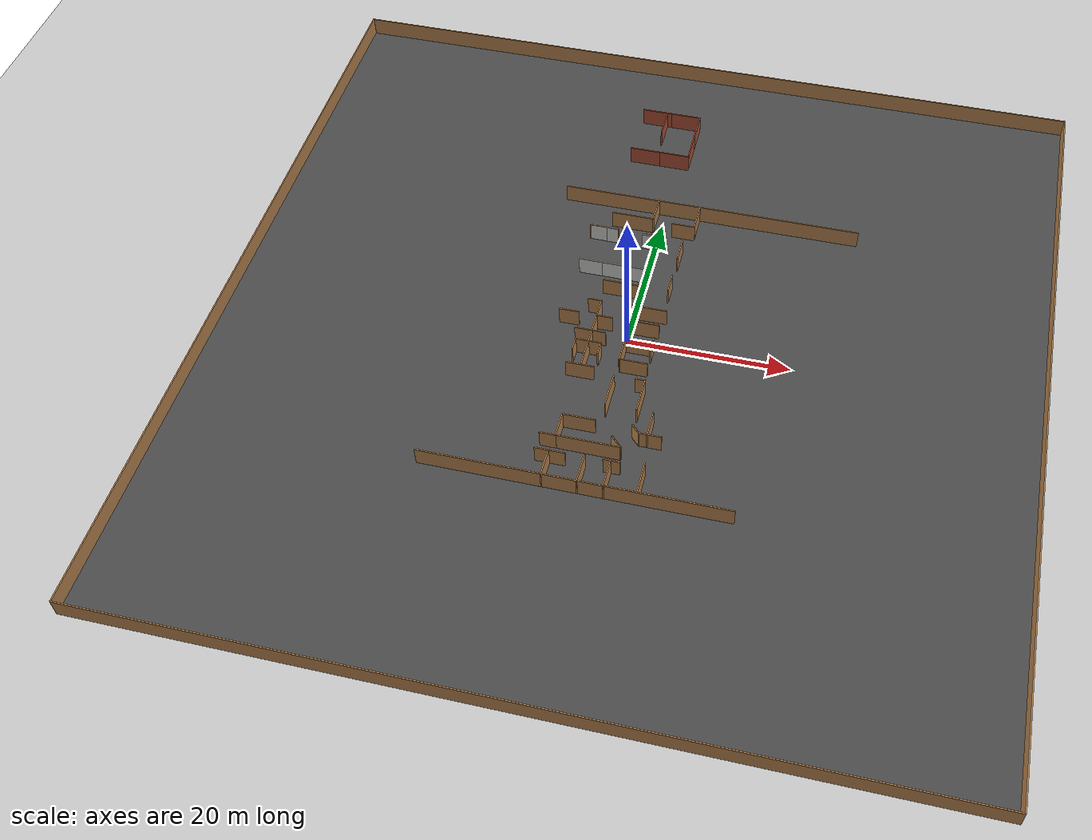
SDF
<sdf version="1.6">
 <world name="default">
  <model name="ground_plane">
   <static>1</static>
   <link name="link">
    <collision name="collision">
     <geometry><plane><normal>0 0 1</normal><size>100 100</size></plane></geometry>
     <surface><friction><ode><mu>100</mu><mu2>50</mu2></ode></friction></surface>
    </collision>
    <visual name="visual">
     <cast_shadows>0</cast_shadows>
     <geometry><plane><normal>0 0 1</normal><size>100 100</size></plane></geometry>
     <material>
      <script><uri>file://media/materials/scripts/gazebo.material</uri><name>Gazebo/Grey</name></script>
     </material>
    </visual>
   </link>
  </model>
  <model name="map_frame">
   <link name="Wall_0">
    <collision name="Wall_0_Collision">
     <geometry><box><size>100.05 0.15 2.5</size></box></geometry>
     <pose>0 0 1.25 0 -0 0</pose>
    </collision>
    <visual name="Wall_0_Visual">
     <pose>0 0 1.25 0 -0 0</pose>
     <geometry><box><size>100.05 0.15 2.5</size></box></geometry>
     <material>
      <script><uri>file://media/materials/scripts/gazebo.material</uri><name>Gazebo/Wood</name></script>
      <ambient>1 1 1 1</ambient>
     </material>
    </visual>
    <pose>0 50 0 0 -0 0</pose>
   </link>
   <link name="Wall_1">
    <collision name="Wall_1_Collision">
     <geometry><box><size>100.05 0.15 2.5</size></box></geometry>
     <pose>0 0 1.25 0 -0 0</pose>
    </collision>
    <visual name="Wall_1_Visual">
     <pose>0 0 1.25 0 -0 0</pose>
     <geometry><box><size>100.05 0.15 2.5</size></box></geometry>
     <material>
      <script><uri>file://media/materials/scripts/gazebo.material</uri><name>Gazebo/Wood</name></script>
      <ambient>1 1 1 1</ambient>
     </material>
    </visual>
    <pose>50 0 0 0 0 -1.5708</pose>
   </link>
   <link name="Wall_2">
    <collision name="Wall_2_Collision">
     <geometry><box><size>100.05 0.15 2.5</size></box></geometry>
     <pose>0 0 1.25 0 -0 0</pose>
    </collision>
    <visual name="Wall_2_Visual">
     <pose>0 0 1.25 0 -0 0</pose>
     <geometry><box><size>100.05 0.15 2.5</size></box></geometry>
     <material>
      <script><uri>file://media/materials/scripts/gazebo.material</uri><name>Gazebo/Wood</name></script>
      <ambient>1 1 1 1</ambient>
     </material>
    </visual>
    <pose>0 -50 0 0 -0 3.14159</pose>
   </link>
   <link name="Wall_3">
    <collision name="Wall_3_Collision">
     <geometry><box><size>100.05 0.15 2.5</size></box></geometry>
     <pose>0 0 1.25 0 -0 0</pose>
    </collision>
    <visual name="Wall_3_Visual">
     <pose>0 0 1.25 0 -0 0</pose>
     <geometry><box><size>100.05 0.15 2.5</size></box></geometry>
     <material>
      <script><uri>file://media/materials/scripts/gazebo.material</uri><name>Gazebo/Wood</name></script>
      <ambient>1 1 1 1</ambient>
     </material>
    </visual>
    <pose>-50 0 0 0 -0 1.5708</pose>
   </link>
   <static>1</static>
  </model>
  <model name="asphalt_plane">
   <static>1</static>
   <link name="link">
    <collision name="collision"><geometry><box><size>100 100 0.1</size></box></geometry></collision>
    <visual name="visual">
     <cast_shadows>0</cast_shadows>
     <geometry><box><size>100 100 0.1</size></box></geometry>
     <material>
      <script>
       <uri>model://asphalt_plane/materials/scripts</uri>
       <uri>model://asphalt_plane/materials/textures</uri>
       <name>vrc/asphalt</name>
      </script>
     </material>
    </visual>
   </link>
  </model>
  <model name="concrete_wall_1">
   <pose>-0.231026 14.3447 0 0 -0 0</pose>
   <link name="Wall_0">
    <collision name="Wall_0_Collision">
     <geometry><box><size>3 0.15 2.5</size></box></geometry>
     <pose>0 0 1.25 0 -0 0</pose>
    </collision>
    <visual name="Wall_0_Visual">
     <pose>0 0 1.25 0 -0 0</pose>
     <geometry><box><size>3 0.15 2.5</size></box></geometry>
     <material>
      <script><uri>file://media/materials/scripts/gazebo.material</uri><name>Gazebo/CeilingTiled</name></script>
      <ambient>1 1 1 1</ambient>
     </material>
     <meta><layer>0</layer></meta>
    </visual>
    <pose>0 0 0 0 -0 1.5708</pose>
   </link>
   <static>1</static>
  </model>
  <model name="concrete_wall_2">
   <pose>-0.252871 11.4504 0 0 -0 0</pose>
   <link name="Wall_0">
    <collision name="Wall_0_Collision">
     <geometry><box><size>3 0.15 2.5</size></box></geometry>
     <pose>0 0 1.25 0 -0 0</pose>
    </collision>
    <visual name="Wall_0_Visual">
     <pose>0 0 1.25 0 -0 0</pose>
     <geometry><box><size>3 0.15 2.5</size></box></geometry>
     <material>
      <script><uri>file://media/materials/scripts/gazebo.material</uri><name>Gazebo/CeilingTiled</name></script>
      <ambient>1 1 1 1</ambient>
     </material>
     <meta><layer>0</layer></meta>
    </visual>
    <pose>0 0 0 0 -0 1.5708</pose>
   </link>
   <static>1</static>
  </model>
  <model name="concrete_wall_6_clone_4">
   <pose>-1.64895 9.93911 0 0 -0 1.57079</pose>
   <link name="Wall_0">
    <collision name="Wall_0_Collision">
     <geometry><box><size>3 0.15 2.5</size></box></geometry>
     <pose>0 0 1.25 0 -0 0</pose>
    </collision>
    <visual name="Wall_0_Visual">
     <pose>0 0 1.25 0 -0 0</pose>
     <geometry><box><size>3 0.15 2.5</size></box></geometry>
     <material>
      <script><uri>file://media/materials/scripts/gazebo.material</uri><name>Gazebo/CeilingTiled</name></script>
      <ambient>1 1 1 1</ambient>
     </material>
     <meta><layer>0</layer></meta>
    </visual>
    <pose>0 0 0 0 -0 1.5708</pose>
   </link>
   <static>1</static>
  </model>
  <model name="concrete_wall_6_clone_5">
   <pose>-4.08866 9.93655 0 0 -0 1.57079</pose>
   <link name="Wall_0">
    <collision name="Wall_0_Collision">
     <geometry><box><size>3 0.15 2.5</size></box></geometry>
     <pose>0 0 1.25 0 -0 0</pose>
    </collision>
    <visual name="Wall_0_Visual">
     <pose>0 0 1.25 0 -0 0</pose>
     <geometry><box><size>3 0.15 2.5</size></box></geometry>
     <material>
      <script><uri>file://media/materials/scripts/gazebo.material</uri><name>Gazebo/CeilingTiled</name></script>
      <ambient>1 1 1 1</ambient>
     </material>
     <meta><layer>0</layer></meta>
    </visual>
    <pose>0 0 0 0 -0 1.5708</pose>
   </link>
   <static>1</static>
  </model>
  <model name="concrete_wall_6_clone_6">
   <pose>-7.05086 9.93464 0 0 -0 1.57079</pose>
   <link name="Wall_0">
    <collision name="Wall_0_Collision">
     <geometry><box><size>3 0.15 2.5</size></box></geometry>
     <pose>0 0 1.25 0 -0 0</pose>
    </collision>
    <visual name="Wall_0_Visual">
     <pose>0 0 1.25 0 -0 0</pose>
     <geometry><box><size>3 0.15 2.5</size></box></geometry>
     <material>
      <script><uri>file://media/materials/scripts/gazebo.material</uri><name>Gazebo/CeilingTiled</name></script>
      <ambient>1 1 1 1</ambient>
     </material>
     <meta><layer>0</layer></meta>
    </visual>
    <pose>0 0 0 0 -0 1.5708</pose>
   </link>
   <static>1</static>
  </model>
  <model name="concrete_wall_6_clone_7">
   <pose>-7.08346 16.0324 0 0 -0 1.57079</pose>
   <link name="Wall_0">
    <collision name="Wall_0_Collision">
     <geometry><box><size>3 0.15 2.5</size></box></geometry>
     <pose>0 0 1.25 0 -0 0</pose>
    </collision>
    <visual name="Wall_0_Visual">
     <pose>0 0 1.25 0 -0 0</pose>
     <geometry><box><size>3 0.15 2.5</size></box></geometry>
     <material>
      <script><uri>file://media/materials/scripts/gazebo.material</uri><name>Gazebo/CeilingTiled</name></script>
      <ambient>1 1 1 1</ambient>
     </material>
     <meta><layer>0</layer></meta>
    </visual>
    <pose>0 0 0 0 -0 1.5708</pose>
   </link>
   <static>1</static>
  </model>
  <model name="concrete_wall_6_clone_8">
   <pose>-1.01529 15.8 0 0 -0 1.57079</pose>
   <link name="Wall_0">
    <collision name="Wall_0_Collision">
     <geometry><box><size>1.5 0.15 2.5</size></box></geometry>
     <pose>0 0 1.25 0 -0 0</pose>
    </collision>
    <visual name="Wall_0_Visual">
     <pose>0 0 1.25 0 -0 0</pose>
     <geometry><box><size>1.5 0.15 2.5</size></box></geometry>
     <material>
      <script><uri>file://media/materials/scripts/gazebo.material</uri><name>Gazebo/CeilingTiled</name></script>
      <ambient>1 1 1 1</ambient>
     </material>
     <meta><layer>0</layer></meta>
    </visual>
    <pose>0 0 0 0 -0 1.5708</pose>
   </link>
   <static>1</static>
  </model>
  <model name="brick_wall_2">
   <pose>-0.863663 31.3819 0 0 -0 0</pose>
   <link name="Wall_0">
    <collision name="Wall_0_Collision">
     <geometry><box><size>4 0.15 2.5</size></box></geometry>
     <pose>0 0 1.25 0 -0 0</pose>
    </collision>
    <visual name="Wall_0_Visual">
     <pose>0 0 1.25 0 -0 0</pose>
     <geometry><box><size>4 0.15 2.5</size></box></geometry>
     <material>
      <script><uri>file://media/materials/scripts/gazebo.material</uri><name>Gazebo/Bricks</name></script>
      <ambient>1 1 1 1</ambient>
     </material>
     <meta><layer>0</layer></meta>
    </visual>
   </link>
   <static>1</static>
  </model>
  <model name="brick_wall_2_clone">
   <pose>-4.86366 31.3819 0 0 -0 0</pose>
   <link name="Wall_0">
    <collision name="Wall_0_Collision">
     <geometry><box><size>4 0.15 2.5</size></box></geometry>
     <pose>0 0 1.25 0 -0 0</pose>
    </collision>
    <visual name="Wall_0_Visual">
     <pose>0 0 1.25 0 -0 0</pose>
     <geometry><box><size>4 0.15 2.5</size></box></geometry>
     <material>
      <script><uri>file://media/materials/scripts/gazebo.material</uri><name>Gazebo/Bricks</name></script>
      <ambient>1 1 1 1</ambient>
     </material>
     <meta><layer>0</layer></meta>
    </visual>
   </link>
   <static>1</static>
  </model>
  <model name="brick_wall_2_clone_3">
   <pose>-0.863663 39.3819 0 0 -0 0</pose>
   <link name="Wall_0">
    <collision name="Wall_0_Collision">
     <geometry><box><size>4 0.15 2.5</size></box></geometry>
     <pose>0 0 1.25 0 -0 0</pose>
    </collision>
    <visual name="Wall_0_Visual">
     <pose>0 0 1.25 0 -0 0</pose>
     <geometry><box><size>4 0.15 2.5</size></box></geometry>
     <material>
      <script><uri>file://media/materials/scripts/gazebo.material</uri><name>Gazebo/Bricks</name></script>
      <ambient>1 1 1 1</ambient>
     </material>
     <meta><layer>0</layer></meta>
    </visual>
   </link>
   <static>1</static>
  </model>
  <model name="brick_wall_2_clone_4">
   <pose>-4.86366 39.3819 0 0 -0 0</pose>
   <link name="Wall_0">
    <collision name="Wall_0_Collision">
     <geometry><box><size>4 0.15 2.5</size></box></geometry>
     <pose>0 0 1.25 0 -0 0</pose>
    </collision>
    <visual name="Wall_0_Visual">
     <pose>0 0 1.25 0 -0 0</pose>
     <geometry><box><size>4 0.15 2.5</size></box></geometry>
     <material>
      <script><uri>file://media/materials/scripts/gazebo.material</uri><name>Gazebo/Bricks</name></script>
      <ambient>1 1 1 1</ambient>
     </material>
     <meta><layer>0</layer></meta>
    </visual>
   </link>
   <static>1</static>
  </model>
  <model name="brick_wall_3">
   <pose>1.06218 33.4428 0 0 -0 1.57079</pose>
   <link name="Wall_0">
    <collision name="Wall_0_Collision">
     <geometry><box><size>4 0.15 2.5</size></box></geometry>
     <pose>0 0 1.25 0 -0 0</pose>
    </collision>
    <visual name="Wall_0_Visual">
     <pose>0 0 1.25 0 -0 0</pose>
     <geometry><box><size>4 0.15 2.5</size></box></geometry>
     <material>
      <script><uri>file://media/materials/scripts/gazebo.material</uri><name>Gazebo/Bricks</name></script>
      <ambient>1 1 1 1</ambient>
     </material>
     <meta><layer>0</layer></meta>
    </visual>
   </link>
   <static>1</static>
  </model>
  <model name="brick_wall_3_clone">
   <pose>1.06218 37.4428 0 0 -0 1.57079</pose>
   <link name="Wall_0">
    <collision name="Wall_0_Collision">
     <geometry><box><size>4 0.15 2.5</size></box></geometry>
     <pose>0 0 1.25 0 -0 0</pose>
    </collision>
    <visual name="Wall_0_Visual">
     <pose>0 0 1.25 0 -0 0</pose>
     <geometry><box><size>4 0.15 2.5</size></box></geometry>
     <material>
      <script><uri>file://media/materials/scripts/gazebo.material</uri><name>Gazebo/Bricks</name></script>
      <ambient>1 1 1 1</ambient>
     </material>
     <meta><layer>0</layer></meta>
    </visual>
   </link>
   <static>1</static>
  </model>
  <model name="brick_wall_3_clone_2">
   <pose>-3.48128 37.3947 0 0 -0 1.57079</pose>
   <link name="Wall_0">
    <collision name="Wall_0_Collision">
     <geometry><box><size>4 0.15 2.5</size></box></geometry>
     <pose>0 0 1.25 0 -0 0</pose>
    </collision>
    <visual name="Wall_0_Visual">
     <pose>0 0 1.25 0 -0 0</pose>
     <geometry><box><size>4 0.15 2.5</size></box></geometry>
     <material>
      <script><uri>file://media/materials/scripts/gazebo.material</uri><name>Gazebo/Bricks</name></script>
      <ambient>1 1 1 1</ambient>
     </material>
     <meta><layer>0</layer></meta>
    </visual>
   </link>
   <static>1</static>
  </model>
  <model name="willowgarage_v1_1">
   <pose>-14.3408 -3.86286 0 0 -0 0</pose>
   <link name="Wall_112">
    <collision name="Wall_112_Collision">
     <geometry><box><size>3.75 0.15 2.5</size></box></geometry>
     <pose>0 0 1.25 0 -0 0</pose>
    </collision>
    <visual name="Wall_112_Visual">
     <pose>0 0 1.25 0 -0 0</pose>
     <geometry><box><size>3.75 0.15 2.5</size></box></geometry>
     <material>
      <script><uri>file://media/materials/scripts/gazebo.material</uri><name>Gazebo/Wood</name></script>
      <ambient>1 1 1 1</ambient>
     </material>
     <meta><layer>0</layer></meta>
    </visual>
    <pose>18.799 24.2454 0 0 0 -1.5708</pose>
   </link>
   <link name="Wall_113">
    <collision name="Wall_113_Collision">
     <geometry><box><size>3 0.15 2.5</size></box></geometry>
     <pose>0 0 1.25 0 -0 0</pose>
    </collision>
    <visual name="Wall_113_Visual">
     <pose>0 0 1.25 0 -0 0</pose>
     <geometry><box><size>3 0.15 2.5</size></box></geometry>
     <material>
      <script><uri>file://media/materials/scripts/gazebo.material</uri><name>Gazebo/Wood</name></script>
      <ambient>1 1 1 1</ambient>
     </material>
     <meta><layer>0</layer></meta>
    </visual>
    <pose>17.374 22.4454 0 0 -0 3.14159</pose>
   </link>
   <link name="Wall_115">
    <collision name="Wall_115_Collision">
     <geometry><box><size>3.5 0.15 2.5</size></box></geometry>
     <pose>0 0 1.25 0 -0 0</pose>
    </collision>
    <visual name="Wall_115_Visual">
     <pose>0 0 1.25 0 -0 0</pose>
     <geometry><box><size>3.5 0.15 2.5</size></box></geometry>
     <material>
      <script><uri>file://media/materials/scripts/gazebo.material</uri><name>Gazebo/Wood</name></script>
      <ambient>1 1 1 1</ambient>
     </material>
     <meta><layer>0</layer></meta>
    </visual>
    <pose>13.3845 24.3704 0 0 0 -1.5708</pose>
   </link>
   <link name="Wall_125">
    <collision name="Wall_125_Collision">
     <geometry><box><size>5.5 0.15 2.5</size></box></geometry>
     <pose>0 0 1.25 0 -0 0</pose>
    </collision>
    <visual name="Wall_125_Visual">
     <pose>0 0 1.25 0 -0 0</pose>
     <geometry><box><size>5.5 0.15 2.5</size></box></geometry>
     <material>
      <script><uri>file://media/materials/scripts/gazebo.material</uri><name>Gazebo/Wood</name></script>
      <ambient>1 1 1 1</ambient>
     </material>
     <meta><layer>0</layer></meta>
    </visual>
    <pose>10.7066 22.7229 0 0 -0 0</pose>
   </link>
   <link name="Wall_134">
    <collision name="Wall_134_Collision">
     <geometry><box><size>3.75 0.15 2.5</size></box></geometry>
     <pose>0 0 1.25 0 -0 0</pose>
    </collision>
    <visual name="Wall_134_Visual">
     <pose>0 0 1.25 0 -0 0</pose>
     <geometry><box><size>3.75 0.15 2.5</size></box></geometry>
     <material>
      <script><uri>file://media/materials/scripts/gazebo.material</uri><name>Gazebo/Wood</name></script>
      <ambient>1 1 1 1</ambient>
     </material>
     <meta><layer>0</layer></meta>
    </visual>
    <pose>7.54321 19.9124 0 0 -0 0</pose>
   </link>
   <link name="Wall_17">
    <collision name="Wall_17_Collision">
     <geometry><box><size>38.5 0.15 2.5</size></box></geometry>
     <pose>0 0 1.25 0 -0 0</pose>
    </collision>
    <visual name="Wall_17_Visual">
     <pose>0 0 1.25 0 -0 0</pose>
     <geometry><box><size>38.5 0.15 2.5</size></box></geometry>
     <material>
      <script><uri>file://media/materials/scripts/gazebo.material</uri><name>Gazebo/Wood</name></script>
      <ambient>1 1 1 1</ambient>
     </material>
     <meta><layer>0</layer></meta>
    </visual>
    <pose>20.2105 26.1459 0 0 -0 0</pose>
   </link>
   <link name="Wall_189">
    <collision name="Wall_189_Collision">
     <geometry><box><size>2.5 0.15 2.5</size></box></geometry>
     <pose>0 0 1.25 0 -0 0</pose>
    </collision>
    <visual name="Wall_189_Visual">
     <pose>0 0 1.25 0 -0 0</pose>
     <geometry><box><size>2.5 0.15 2.5</size></box></geometry>
     <material>
      <script><uri>file://media/materials/scripts/gazebo.material</uri><name>Gazebo/Wood</name></script>
      <ambient>1 1 1 1</ambient>
     </material>
     <meta><layer>0</layer></meta>
    </visual>
    <pose>17.7844 12.3173 0 0 -0 1.5708</pose>
   </link>
   <link name="Wall_192">
    <collision name="Wall_192_Collision">
     <geometry><box><size>3.25 0.15 2.5</size></box></geometry>
     <pose>0 0 1.25 0 -0 0</pose>
    </collision>
    <visual name="Wall_192_Visual">
     <pose>0 0 1.25 0 -0 0</pose>
     <geometry><box><size>3.25 0.15 2.5</size></box></geometry>
     <material>
      <script><uri>file://media/materials/scripts/gazebo.material</uri><name>Gazebo/Wood</name></script>
      <ambient>1 1 1 1</ambient>
     </material>
     <meta><layer>0</layer></meta>
    </visual>
    <pose>17.8055 18.1447 0 0 0 -1.5708</pose>
   </link>
   <link name="Wall_196">
    <collision name="Wall_196_Collision">
     <geometry><box><size>1.75 0.15 2.5</size></box></geometry>
     <pose>0 0 1.25 0 -0 0</pose>
    </collision>
    <visual name="Wall_196_Visual">
     <pose>0 0 1.25 0 -0 0</pose>
     <geometry><box><size>1.75 0.15 2.5</size></box></geometry>
     <material>
      <script><uri>file://media/materials/scripts/gazebo.material</uri><name>Gazebo/Wood</name></script>
      <ambient>1 1 1 1</ambient>
     </material>
     <meta><layer>0</layer></meta>
    </visual>
    <pose>13.4371 19.8178 0 0 -0 0</pose>
   </link>
   <link name="Wall_197">
    <collision name="Wall_197_Collision">
     <geometry><box><size>9 0.15 2.5</size></box></geometry>
     <pose>0 0 1.25 0 -0 0</pose>
    </collision>
    <visual name="Wall_197_Visual">
     <pose>0 0 1.25 0 -0 0</pose>
     <geometry><box><size>9 0.15 2.5</size></box></geometry>
     <material>
      <script><uri>file://media/materials/scripts/gazebo.material</uri><name>Gazebo/Wood</name></script>
      <ambient>1 1 1 1</ambient>
     </material>
     <meta><layer>0</layer></meta>
    </visual>
    <pose>14.2371 15.3928 0 0 0 -1.5708</pose>
   </link>
   <link name="Wall_198">
    <collision name="Wall_198_Collision">
     <geometry><box><size>4.75 0.15 2.5</size></box></geometry>
     <pose>0 0 1.25 0 -0 0</pose>
    </collision>
    <visual name="Wall_198_Visual">
     <pose>0 0 1.25 0 -0 0</pose>
     <geometry><box><size>4.75 0.15 2.5</size></box></geometry>
     <material>
      <script><uri>file://media/materials/scripts/gazebo.material</uri><name>Gazebo/Wood</name></script>
      <ambient>1 1 1 1</ambient>
     </material>
     <meta><layer>0</layer></meta>
    </visual>
    <pose>11.9371 10.9678 0 0 -0 3.14159</pose>
   </link>
   <link name="Wall_218">
    <collision name="Wall_218_Collision">
     <geometry><box><size>4.02628 0.15 2.5</size></box></geometry>
     <pose>0 0 1.25 0 -0 0</pose>
    </collision>
    <visual name="Wall_218_Visual">
     <pose>0 0 1.25 0 -0 0</pose>
     <geometry><box><size>4.02628 0.15 2.5</size></box></geometry>
     <material>
      <script><uri>file://media/materials/scripts/gazebo.material</uri><name>Gazebo/Wood</name></script>
      <ambient>1 1 1 1</ambient>
     </material>
     <meta><layer>0</layer></meta>
    </visual>
    <pose>16.3894 7.62089 0 0 0 -3.13801</pose>
   </link>
   <link name="Wall_221">
    <collision name="Wall_221_Collision">
     <geometry><box><size>8.75 0.15 2.5</size></box></geometry>
     <pose>0 0 1.25 0 -0 0</pose>
    </collision>
    <visual name="Wall_221_Visual">
     <pose>0 0 1.25 0 -0 0</pose>
     <geometry><box><size>8.75 0.15 2.5</size></box></geometry>
     <material>
      <script><uri>file://media/materials/scripts/gazebo.material</uri><name>Gazebo/Wood</name></script>
      <ambient>1 1 1 1</ambient>
     </material>
     <meta><layer>0</layer></meta>
    </visual>
    <pose>14.4513 3.31394 0 0 -0 1.5708</pose>
   </link>
   <link name="Wall_223">
    <collision name="Wall_223_Collision">
     <geometry><box><size>3.5 0.15 2.5</size></box></geometry>
     <pose>0 0 1.25 0 -0 0</pose>
    </collision>
    <visual name="Wall_223_Visual">
     <pose>0 0 1.25 0 -0 0</pose>
     <geometry><box><size>3.5 0.15 2.5</size></box></geometry>
     <material>
      <script><uri>file://media/materials/scripts/gazebo.material</uri><name>Gazebo/Wood</name></script>
      <ambient>1 1 1 1</ambient>
     </material>
     <meta><layer>0</layer></meta>
    </visual>
    <pose>16.1263 -0.986061 0 0 -0 0</pose>
   </link>
   <link name="Wall_225">
    <collision name="Wall_225_Collision">
     <geometry><box><size>3.5 0.15 2.5</size></box></geometry>
     <pose>0 0 1.25 0 -0 0</pose>
    </collision>
    <visual name="Wall_225_Visual">
     <pose>0 0 1.25 0 -0 0</pose>
     <geometry><box><size>3.5 0.15 2.5</size></box></geometry>
     <material>
      <script><uri>file://media/materials/scripts/gazebo.material</uri><name>Gazebo/Wood</name></script>
      <ambient>1 1 1 1</ambient>
     </material>
     <meta><layer>0</layer></meta>
    </visual>
    <pose>16.2246 5.15959 0 0 -0 0</pose>
   </link>
   <link name="Wall_227">
    <collision name="Wall_227_Collision">
     <geometry><box><size>3.5 0.15 2.5</size></box></geometry>
     <pose>0 0 1.25 0 -0 0</pose>
    </collision>
    <visual name="Wall_227_Visual">
     <pose>0 0 1.25 0 -0 0</pose>
     <geometry><box><size>3.5 0.15 2.5</size></box></geometry>
     <material>
      <script><uri>file://media/materials/scripts/gazebo.material</uri><name>Gazebo/Wood</name></script>
      <ambient>1 1 1 1</ambient>
     </material>
     <meta><layer>0</layer></meta>
    </visual>
    <pose>16.0641 2.21696 0 0 -0 0</pose>
   </link>
   <link name="Wall_228">
    <collision name="Wall_228_Collision">
     <geometry><box><size>1 0.15 2.5</size></box></geometry>
     <pose>0 0 1.25 0 -0 0</pose>
    </collision>
    <visual name="Wall_228_Visual">
     <pose>0 0 1.25 0 -0 0</pose>
     <geometry><box><size>1 0.15 2.5</size></box></geometry>
     <material>
      <script><uri>file://media/materials/scripts/gazebo.material</uri><name>Gazebo/Wood</name></script>
      <ambient>1 1 1 1</ambient>
     </material>
     <meta><layer>0</layer></meta>
    </visual>
    <pose>17.7391 2.64196 0 0 -0 1.5708</pose>
   </link>
   <link name="Wall_229">
    <collision name="Wall_229_Collision">
     <geometry><box><size>2 0.15 2.5</size></box></geometry>
     <pose>0 0 1.25 0 -0 0</pose>
    </collision>
    <visual name="Wall_229_Visual">
     <pose>0 0 1.25 0 -0 0</pose>
     <geometry><box><size>2 0.15 2.5</size></box></geometry>
     <material>
      <script><uri>file://media/materials/scripts/gazebo.material</uri><name>Gazebo/Wood</name></script>
      <ambient>1 1 1 1</ambient>
     </material>
     <meta><layer>0</layer></meta>
    </visual>
    <pose>17.7391 2.14196 0 0 0 -1.5708</pose>
   </link>
   <link name="Wall_234">
    <collision name="Wall_234_Collision">
     <geometry><box><size>7.75 0.15 2.5</size></box></geometry>
     <pose>0 0 1.25 0 -0 0</pose>
    </collision>
    <visual name="Wall_234_Visual">
     <pose>0 0 1.25 0 -0 0</pose>
     <geometry><box><size>7.75 0.15 2.5</size></box></geometry>
     <material>
      <script><uri>file://media/materials/scripts/gazebo.material</uri><name>Gazebo/Wood</name></script>
      <ambient>1 1 1 1</ambient>
     </material>
     <meta><layer>0</layer></meta>
    </visual>
    <pose>13.7458 -13.5128 0 0 -0 3.14159</pose>
   </link>
   <link name="Wall_235">
    <collision name="Wall_235_Collision">
     <geometry><box><size>3.25 0.15 2.5</size></box></geometry>
     <pose>0 0 1.25 0 -0 0</pose>
    </collision>
    <visual name="Wall_235_Visual">
     <pose>0 0 1.25 0 -0 0</pose>
     <geometry><box><size>3.25 0.15 2.5</size></box></geometry>
     <material>
      <script><uri>file://media/materials/scripts/gazebo.material</uri><name>Gazebo/Wood</name></script>
      <ambient>1 1 1 1</ambient>
     </material>
     <meta><layer>0</layer></meta>
    </visual>
    <pose>9.94576 -11.9628 0 0 -0 1.5708</pose>
   </link>
   <link name="Wall_236">
    <collision name="Wall_236_Collision">
     <geometry><box><size>4 0.15 2.5</size></box></geometry>
     <pose>0 0 1.25 0 -0 0</pose>
    </collision>
    <visual name="Wall_236_Visual">
     <pose>0 0 1.25 0 -0 0</pose>
     <geometry><box><size>4 0.15 2.5</size></box></geometry>
     <material>
      <script><uri>file://media/materials/scripts/gazebo.material</uri><name>Gazebo/Wood</name></script>
      <ambient>1 1 1 1</ambient>
     </material>
     <meta><layer>0</layer></meta>
    </visual>
    <pose>11.8708 -10.4128 0 0 -0 0</pose>
   </link>
   <link name="Wall_238">
    <collision name="Wall_238_Collision">
     <geometry><box><size>2 0.15 2.5</size></box></geometry>
     <pose>0 0 1.25 0 -0 0</pose>
    </collision>
    <visual name="Wall_238_Visual">
     <pose>0 0 1.25 0 -0 0</pose>
     <geometry><box><size>2 0.15 2.5</size></box></geometry>
     <material>
      <script><uri>file://media/materials/scripts/gazebo.material</uri><name>Gazebo/Wood</name></script>
      <ambient>1 1 1 1</ambient>
     </material>
     <meta><layer>0</layer></meta>
    </visual>
    <pose>16.8917 -12.8587 0 0 -0 2.35619</pose>
   </link>
   <link name="Wall_249">
    <collision name="Wall_249_Collision">
     <geometry><box><size>2 0.15 2.5</size></box></geometry>
     <pose>0 0 1.25 0 -0 0</pose>
    </collision>
    <visual name="Wall_249_Visual">
     <pose>0 0 1.25 0 -0 0</pose>
     <geometry><box><size>2 0.15 2.5</size></box></geometry>
     <material>
      <script><uri>file://media/materials/scripts/gazebo.material</uri><name>Gazebo/Wood</name></script>
      <ambient>1 1 1 1</ambient>
     </material>
     <meta><layer>0</layer></meta>
    </visual>
    <pose>9.02075 -13.5128 0 0 -0 3.14159</pose>
   </link>
   <link name="Wall_26">
    <collision name="Wall_26_Collision">
     <geometry><box><size>36.75 0.15 2.5</size></box></geometry>
     <pose>0 0 1.25 0 -0 0</pose>
    </collision>
    <visual name="Wall_26_Visual">
     <pose>0 0 1.25 0 -0 0</pose>
     <geometry><box><size>36.75 0.15 2.5</size></box></geometry>
     <material>
      <script><uri>file://media/materials/scripts/gazebo.material</uri><name>Gazebo/Wood</name></script>
      <ambient>1 1 1 1</ambient>
     </material>
     <meta><layer>0</layer></meta>
    </visual>
    <pose>13.3466 -19.0514 0 0 -0 0</pose>
   </link>
   <link name="Wall_311">
    <collision name="Wall_311_Collision">
     <geometry><box><size>3.5 0.15 2.5</size></box></geometry>
     <pose>0 0 1.25 0 -0 0</pose>
    </collision>
    <visual name="Wall_311_Visual">
     <pose>0 0 1.25 0 -0 0</pose>
     <geometry><box><size>3.5 0.15 2.5</size></box></geometry>
     <material>
      <script><uri>file://media/materials/scripts/gazebo.material</uri><name>Gazebo/Wood</name></script>
      <ambient>1 1 1 1</ambient>
     </material>
     <meta><layer>0</layer></meta>
    </visual>
    <pose>10.0901 -2.83065 0 0 -0 3.14159</pose>
   </link>
   <link name="Wall_313">
    <collision name="Wall_313_Collision">
     <geometry><box><size>10.5 0.15 2.5</size></box></geometry>
     <pose>0 0 1.25 0 -0 0</pose>
    </collision>
    <visual name="Wall_313_Visual">
     <pose>0 0 1.25 0 -0 0</pose>
     <geometry><box><size>10.5 0.15 2.5</size></box></geometry>
     <material>
      <script><uri>file://media/materials/scripts/gazebo.material</uri><name>Gazebo/Wood</name></script>
      <ambient>1 1 1 1</ambient>
     </material>
     <meta><layer>0</layer></meta>
    </visual>
    <pose>10.2019 2.34435 0 0 -0 1.5708</pose>
   </link>
   <link name="Wall_315">
    <collision name="Wall_315_Collision">
     <geometry><box><size>1.75 0.15 2.5</size></box></geometry>
     <pose>0 0 1.25 0 -0 0</pose>
    </collision>
    <visual name="Wall_315_Visual">
     <pose>0 0 1.25 0 -0 0</pose>
     <geometry><box><size>1.75 0.15 2.5</size></box></geometry>
     <material>
      <script><uri>file://media/materials/scripts/gazebo.material</uri><name>Gazebo/Wood</name></script>
      <ambient>1 1 1 1</ambient>
     </material>
     <meta><layer>0</layer></meta>
    </visual>
    <pose>9.4019 7.51935 0 0 -0 3.14159</pose>
   </link>
   <link name="Wall_317">
    <collision name="Wall_317_Collision">
     <geometry><box><size>1.5 0.15 2.5</size></box></geometry>
     <pose>0 0 1.25 0 -0 0</pose>
    </collision>
    <visual name="Wall_317_Visual">
     <pose>0 0 1.25 0 -0 0</pose>
     <geometry><box><size>1.5 0.15 2.5</size></box></geometry>
     <material>
      <script><uri>file://media/materials/scripts/gazebo.material</uri><name>Gazebo/Wood</name></script>
      <ambient>1 1 1 1</ambient>
     </material>
     <meta><layer>0</layer></meta>
    </visual>
    <pose>13.7763 7.61394 0 0 -0 3.14159</pose>
   </link>
   <link name="Wall_321">
    <collision name="Wall_321_Collision">
     <geometry><box><size>1.75 0.15 2.5</size></box></geometry>
     <pose>0 0 1.25 0 -0 0</pose>
    </collision>
    <visual name="Wall_321_Visual">
     <pose>0 0 1.25 0 -0 0</pose>
     <geometry><box><size>1.75 0.15 2.5</size></box></geometry>
     <material>
      <script><uri>file://media/materials/scripts/gazebo.material</uri><name>Gazebo/Wood</name></script>
      <ambient>1 1 1 1</ambient>
     </material>
     <meta><layer>0</layer></meta>
    </visual>
    <pose>11.7228 0.119011 0 0 -0 1.5708</pose>
   </link>
   <link name="Wall_322">
    <collision name="Wall_322_Collision">
     <geometry><box><size>3.25 0.15 2.5</size></box></geometry>
     <pose>0 0 1.25 0 -0 0</pose>
    </collision>
    <visual name="Wall_322_Visual">
     <pose>0 0 1.25 0 -0 0</pose>
     <geometry><box><size>3.25 0.15 2.5</size></box></geometry>
     <material>
      <script><uri>file://media/materials/scripts/gazebo.material</uri><name>Gazebo/Wood</name></script>
      <ambient>1 1 1 1</ambient>
     </material>
     <meta><layer>0</layer></meta>
    </visual>
    <pose>10.1728 0.919011 0 0 -0 3.14159</pose>
   </link>
   <link name="Wall_324">
    <collision name="Wall_324_Collision">
     <geometry><box><size>1.75 0.15 2.5</size></box></geometry>
     <pose>0 0 1.25 0 -0 0</pose>
    </collision>
    <visual name="Wall_324_Visual">
     <pose>0 0 1.25 0 -0 0</pose>
     <geometry><box><size>1.75 0.15 2.5</size></box></geometry>
     <material>
      <script><uri>file://media/materials/scripts/gazebo.material</uri><name>Gazebo/Wood</name></script>
      <ambient>1 1 1 1</ambient>
     </material>
     <meta><layer>0</layer></meta>
    </visual>
    <pose>8.62279 0.119011 0 0 0 -1.5708</pose>
   </link>
   <link name="Wall_326">
    <collision name="Wall_326_Collision">
     <geometry><box><size>2.5 0.15 2.5</size></box></geometry>
     <pose>0 0 1.25 0 -0 0</pose>
    </collision>
    <visual name="Wall_326_Visual">
     <pose>0 0 1.25 0 -0 0</pose>
     <geometry><box><size>2.5 0.15 2.5</size></box></geometry>
     <material>
      <script><uri>file://media/materials/scripts/gazebo.material</uri><name>Gazebo/Wood</name></script>
      <ambient>1 1 1 1</ambient>
     </material>
     <meta><layer>0</layer></meta>
    </visual>
    <pose>6.71011 5.1345 0 0 -0 0</pose>
   </link>
   <link name="Wall_328">
    <collision name="Wall_328_Collision">
     <geometry><box><size>2.25 0.15 2.5</size></box></geometry>
     <pose>0 0 1.25 0 -0 0</pose>
    </collision>
    <visual name="Wall_328_Visual">
     <pose>0 0 1.25 0 -0 0</pose>
     <geometry><box><size>2.25 0.15 2.5</size></box></geometry>
     <material>
      <script><uri>file://media/materials/scripts/gazebo.material</uri><name>Gazebo/Wood</name></script>
      <ambient>1 1 1 1</ambient>
     </material>
     <meta><layer>0</layer></meta>
    </visual>
    <pose>9.18402 2.62221 0 0 -0 3.14159</pose>
   </link>
   <link name="Wall_330">
    <collision name="Wall_330_Collision">
     <geometry><box><size>2 0.15 2.5</size></box></geometry>
     <pose>0 0 1.25 0 -0 0</pose>
    </collision>
    <visual name="Wall_330_Visual">
     <pose>0 0 1.25 0 -0 0</pose>
     <geometry><box><size>2 0.15 2.5</size></box></geometry>
     <material>
      <script><uri>file://media/materials/scripts/gazebo.material</uri><name>Gazebo/Wood</name></script>
      <ambient>1 1 1 1</ambient>
     </material>
     <meta><layer>0</layer></meta>
    </visual>
    <pose>11.159 5.08798 0 0 -0 0</pose>
   </link>
   <link name="Wall_332">
    <collision name="Wall_332_Collision">
     <geometry><box><size>1.75 0.15 2.5</size></box></geometry>
     <pose>0 0 1.25 0 -0 0</pose>
    </collision>
    <visual name="Wall_332_Visual">
     <pose>0 0 1.25 0 -0 0</pose>
     <geometry><box><size>1.75 0.15 2.5</size></box></geometry>
     <material>
      <script><uri>file://media/materials/scripts/gazebo.material</uri><name>Gazebo/Wood</name></script>
      <ambient>1 1 1 1</ambient>
     </material>
     <meta><layer>0</layer></meta>
    </visual>
    <pose>11.034 2.62221 0 0 -0 0</pose>
   </link>
   <link name="Wall_34">
    <collision name="Wall_34_Collision">
     <geometry><box><size>4 0.15 2.5</size></box></geometry>
     <pose>0 0 1.25 0 -0 0</pose>
    </collision>
    <visual name="Wall_34_Visual">
     <pose>0 0 1.25 0 -0 0</pose>
     <geometry><box><size>4 0.15 2.5</size></box></geometry>
     <material>
      <script><uri>file://media/materials/scripts/gazebo.material</uri><name>Gazebo/Wood</name></script>
      <ambient>1 1 1 1</ambient>
     </material>
     <meta><layer>0</layer></meta>
    </visual>
    <pose>20.7066 -16.9526 0 0 0 -1.5708</pose>
   </link>
   <link name="Wall_39">
    <collision name="Wall_39_Collision">
     <geometry><box><size>2 0.15 2.5</size></box></geometry>
     <pose>0 0 1.25 0 -0 0</pose>
    </collision>
    <visual name="Wall_39_Visual">
     <pose>0 0 1.25 0 -0 0</pose>
     <geometry><box><size>2 0.15 2.5</size></box></geometry>
     <material>
      <script><uri>file://media/materials/scripts/gazebo.material</uri><name>Gazebo/Wood</name></script>
      <ambient>1 1 1 1</ambient>
     </material>
     <meta><layer>0</layer></meta>
    </visual>
    <pose>16.9837 -15.5301 0 0 -0 3.14159</pose>
   </link>
   <link name="Wall_43">
    <collision name="Wall_43_Collision">
     <geometry><box><size>3.75 0.15 2.5</size></box></geometry>
     <pose>0 0 1.25 0 -0 0</pose>
    </collision>
    <visual name="Wall_43_Visual">
     <pose>0 0 1.25 0 -0 0</pose>
     <geometry><box><size>3.75 0.15 2.5</size></box></geometry>
     <material>
      <script><uri>file://media/materials/scripts/gazebo.material</uri><name>Gazebo/Wood</name></script>
      <ambient>1 1 1 1</ambient>
     </material>
     <meta><layer>0</layer></meta>
    </visual>
    <pose>16.8679 -17.2949 0 0 -0 1.5708</pose>
   </link>
   <link name="Wall_47">
    <collision name="Wall_47_Collision">
     <geometry><box><size>3.75 0.15 2.5</size></box></geometry>
     <pose>0 0 1.25 0 -0 0</pose>
    </collision>
    <visual name="Wall_47_Visual">
     <pose>0 0 1.25 0 -0 0</pose>
     <geometry><box><size>3.75 0.15 2.5</size></box></geometry>
     <material>
      <script><uri>file://media/materials/scripts/gazebo.material</uri><name>Gazebo/Wood</name></script>
      <ambient>1 1 1 1</ambient>
     </material>
     <meta><layer>0</layer></meta>
    </visual>
    <pose>13.8443 -17.3154 0 0 -0 1.5708</pose>
   </link>
   <link name="Wall_50">
    <collision name="Wall_50_Collision">
     <geometry><box><size>3.5 0.15 2.5</size></box></geometry>
     <pose>0 0 1.25 0 -0 0</pose>
    </collision>
    <visual name="Wall_50_Visual">
     <pose>0 0 1.25 0 -0 0</pose>
     <geometry><box><size>3.5 0.15 2.5</size></box></geometry>
     <material>
      <script><uri>file://media/materials/scripts/gazebo.material</uri><name>Gazebo/Wood</name></script>
      <ambient>1 1 1 1</ambient>
     </material>
     <meta><layer>0</layer></meta>
    </visual>
    <pose>9.72195 -17.3789 0 0 -0 1.5708</pose>
   </link>
   <link name="Wall_51">
    <collision name="Wall_51_Collision">
     <geometry><box><size>2 0.15 2.5</size></box></geometry>
     <pose>0 0 1.25 0 -0 0</pose>
    </collision>
    <visual name="Wall_51_Visual">
     <pose>0 0 1.25 0 -0 0</pose>
     <geometry><box><size>2 0.15 2.5</size></box></geometry>
     <material>
      <script><uri>file://media/materials/scripts/gazebo.material</uri><name>Gazebo/Wood</name></script>
      <ambient>1 1 1 1</ambient>
     </material>
     <meta><layer>0</layer></meta>
    </visual>
    <pose>10.647 -15.7039 0 0 -0 0</pose>
   </link>
   <link name="Wall_53">
    <collision name="Wall_53_Collision">
     <geometry><box><size>1.75 0.15 2.5</size></box></geometry>
     <pose>0 0 1.25 0 -0 0</pose>
    </collision>
    <visual name="Wall_53_Visual">
     <pose>0 0 1.25 0 -0 0</pose>
     <geometry><box><size>1.75 0.15 2.5</size></box></geometry>
     <material>
      <script><uri>file://media/materials/scripts/gazebo.material</uri><name>Gazebo/Wood</name></script>
      <ambient>1 1 1 1</ambient>
     </material>
     <meta><layer>0</layer></meta>
    </visual>
    <pose>8.92195 -15.7039 0 0 -0 3.14159</pose>
   </link>
   <link name="Wall_70">
    <collision name="Wall_70_Collision">
     <geometry><box><size>4.5 0.15 2.5</size></box></geometry>
     <pose>0 0 1.25 0 -0 0</pose>
    </collision>
    <visual name="Wall_70_Visual">
     <pose>0 0 1.25 0 -0 0</pose>
     <geometry><box><size>4.5 0.15 2.5</size></box></geometry>
     <material>
      <script><uri>file://media/materials/scripts/gazebo.material</uri><name>Gazebo/Wood</name></script>
      <ambient>1 1 1 1</ambient>
     </material>
     <meta><layer>0</layer></meta>
    </visual>
    <pose>14.386 -5.7165 0 0 -0 1.5708</pose>
   </link>
   <link name="Wall_80">
    <collision name="Wall_80_Collision">
     <geometry><box><size>3.25 0.15 2.5</size></box></geometry>
     <pose>0 0 1.25 0 -0 0</pose>
    </collision>
    <visual name="Wall_80_Visual">
     <pose>0 0 1.25 0 -0 0</pose>
     <geometry><box><size>3.25 0.15 2.5</size></box></geometry>
     <material>
      <script><uri>file://media/materials/scripts/gazebo.material</uri><name>Gazebo/Wood</name></script>
      <ambient>1 1 1 1</ambient>
     </material>
     <meta><layer>0</layer></meta>
    </visual>
    <pose>20.1084 -9.5485 0 0 0 -1.5708</pose>
   </link>
   <link name="Wall_82">
    <collision name="Wall_82_Collision">
     <geometry><box><size>2.75 0.15 2.5</size></box></geometry>
     <pose>0 0 1.25 0 -0 0</pose>
    </collision>
    <visual name="Wall_82_Visual">
     <pose>0 0 1.25 0 -0 0</pose>
     <geometry><box><size>2.75 0.15 2.5</size></box></geometry>
     <material>
      <script><uri>file://media/materials/scripts/gazebo.material</uri><name>Gazebo/Wood</name></script>
      <ambient>1 1 1 1</ambient>
     </material>
     <meta><layer>0</layer></meta>
    </visual>
    <pose>20.4084 -11.0985 0 0 -0 3.14159</pose>
   </link>
   <link name="Wall_83">
    <collision name="Wall_83_Collision">
     <geometry><box><size>1.5 0.15 2.5</size></box></geometry>
     <pose>0 0 1.25 0 -0 0</pose>
    </collision>
    <visual name="Wall_83_Visual">
     <pose>0 0 1.25 0 -0 0</pose>
     <geometry><box><size>1.5 0.15 2.5</size></box></geometry>
     <material>
      <script><uri>file://media/materials/scripts/gazebo.material</uri><name>Gazebo/Wood</name></script>
      <ambient>1 1 1 1</ambient>
     </material>
     <meta><layer>0</layer></meta>
    </visual>
    <pose>18.6311 -10.6212 0 0 -0 2.35619</pose>
   </link>
   <link name="Wall_85">
    <collision name="Wall_85_Collision">
     <geometry><box><size>4.5 0.15 2.5</size></box></geometry>
     <pose>0 0 1.25 0 -0 0</pose>
    </collision>
    <visual name="Wall_85_Visual">
     <pose>0 0 1.25 0 -0 0</pose>
     <geometry><box><size>4.5 0.15 2.5</size></box></geometry>
     <material>
      <script><uri>file://media/materials/scripts/gazebo.material</uri><name>Gazebo/Wood</name></script>
      <ambient>1 1 1 1</ambient>
     </material>
     <meta><layer>0</layer></meta>
    </visual>
    <pose>18.1288 -5.66299 0 0 -0 1.5708</pose>
   </link>
   <link name="Wall_86">
    <collision name="Wall_86_Collision">
     <geometry><box><size>1.25 0.15 2.5</size></box></geometry>
     <pose>0 0 1.25 0 -0 0</pose>
    </collision>
    <visual name="Wall_86_Visual">
     <pose>0 0 1.25 0 -0 0</pose>
     <geometry><box><size>1.25 0.15 2.5</size></box></geometry>
     <material>
      <script><uri>file://media/materials/scripts/gazebo.material</uri><name>Gazebo/Wood</name></script>
      <ambient>1 1 1 1</ambient>
     </material>
     <meta><layer>0</layer></meta>
    </visual>
    <pose>17.5788 -3.488 0 0 -0 3.14159</pose>
   </link>
   <static>1</static>
  </model>
  <model name="concrete_wall_6_clone_8_clone">
   <pose>-5.68382 16.0275 0 0 -0 1.57079</pose>
   <link name="Wall_0">
    <collision name="Wall_0_Collision">
     <geometry><box><size>1.5 0.15 2.5</size></box></geometry>
     <pose>0 0 1.25 0 -0 0</pose>
    </collision>
    <visual name="Wall_0_Visual">
     <pose>0 0 1.25 0 -0 0</pose>
     <geometry><box><size>1.5 0.15 2.5</size></box></geometry>
     <material>
      <script><uri>file://media/materials/scripts/gazebo.material</uri><name>Gazebo/CeilingTiled</name></script>
      <ambient>1 1 1 1</ambient>
     </material>
     <meta><layer>0</layer></meta>
    </visual>
    <pose>0 0 0 0 -0 1.5708</pose>
   </link>
   <static>1</static>
  </model>
 </world>
</sdf>
